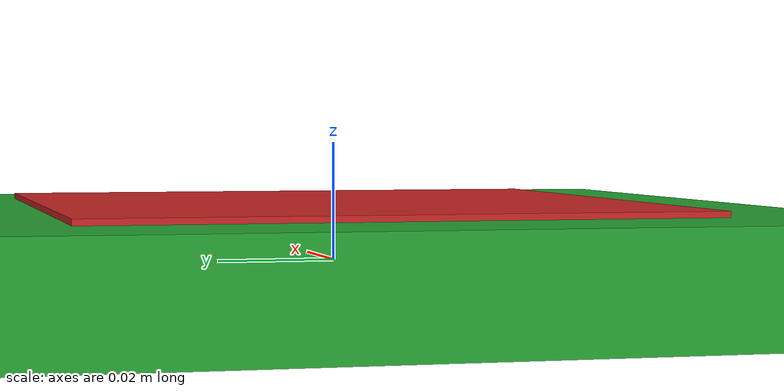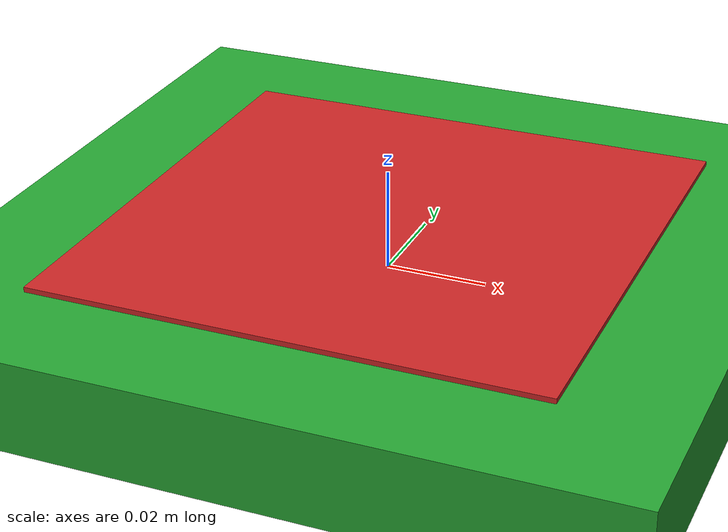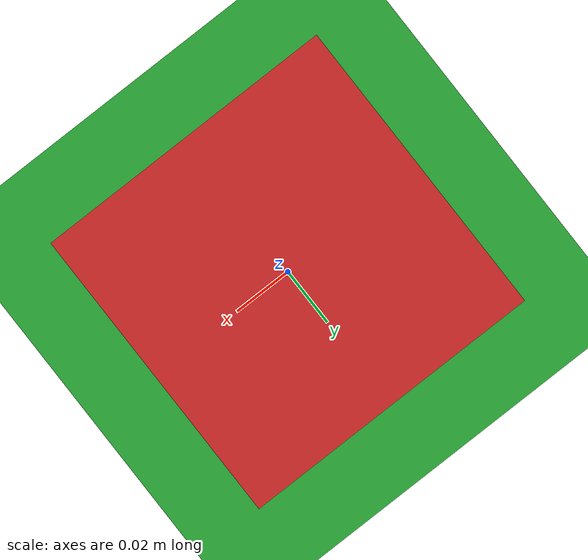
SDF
<?xml version="1.0" ?>

<sdf version="1.5">
  <model name="rail_system">
    <link name="link">
      <inertial>
        <pose>0 0 0 0 0 0</pose>
        <mass>50</mass>
        <inertia>
            <ixx>1</ixx>
            <ixy>1</ixy>
            <ixz>1</ixz>
            <iyy>1</iyy>
            <iyz>1</iyz>
            <izz>1</izz>
        </inertia>
      </inertial>
      <collision name="collision">
        <geometry>
          <box>
            <size>1.0 1.0 0.02</size>
          </box>
        </geometry>
        <surface>
          <bounce>
            <restitution_coefficient>0</restitution_coefficient>
            <!-- Threshold for Bounce Capture velocity (Velocity below this value will yield COR of 0 -->
          </bounce>
          <friction>
            <ode>
              <mu>1.0</mu>
              <mu2>1.0</mu2>
            </ode>
          </friction>
          <contact>
            <ode>
              <kp>1e+12</kp>
              <kd>0.01</kd>
              <max_vel>10</max_vel>
              <min_depth>0.003</min_depth>
            </ode>
          </contact>
        </surface>
      </collision>

      <sensor name='contact_sensor' type='contact'>
        <contact>
          <collision>collision</collision>
        </contact>
      </sensor>

      <visual name="visual2">
        <geometry>
          <box>
            <size>1.0 1.0 0.018</size>
          </box>
        </geometry>
        <material>
          <script>
            <name>Gazebo/Green</name>
          </script>
        </material>
      </visual>
      <visual name="visual">
        <geometry>
          <box>
            <size>0.1 0.1 0.02</size>
          </box>
        </geometry>
        <material>
          <script>
            <name>Gazebo/Red</name>
          </script>
        </material>
      </visual>
    </link>

  </model>
</sdf>
